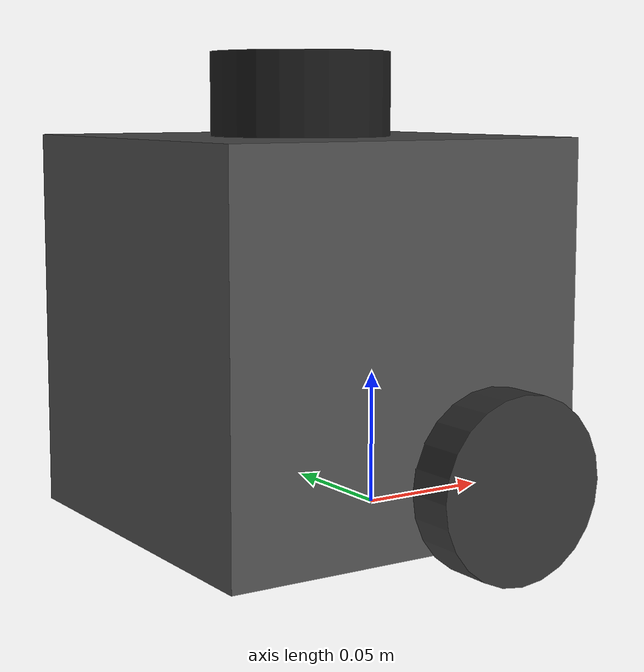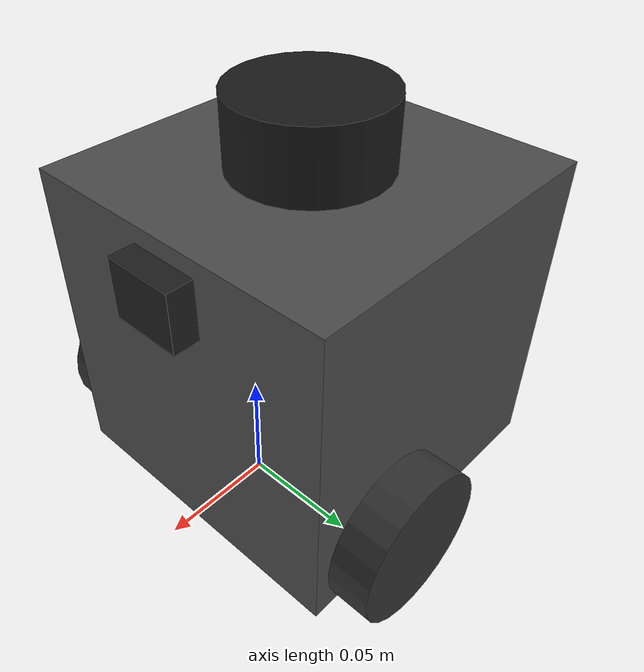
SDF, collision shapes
<?xml version="1.0" ?>
<sdf version="1.8">
  <model name="turtlebot3_burger">

    <pose>0 0 0 0 0 0</pose>

    <link name="base_footprint"/>

    <link name="base_link">

      <inertial>
        <pose>-0.064 0 0.070 0 0 0</pose>
        <inertia>
          <ixx>1.9527e-02</ixx>
          <ixy>0</ixy>
          <ixz>0</ixz>
          <iyy>1.9527e-02</iyy>
          <iyz>0</iyz>
          <izz>1.9527e-02</izz>
        </inertia>
        <mass>8.2573504e-01</mass>
      </inertial>

      <collision name="base_collision">
        <pose>-0.032 0 0.070 0 0 0</pose>
        <geometry>
          <box>
            <size>0.14 0.14 0.14</size>
          </box>
        </geometry>
      </collision>

      <visual name="base_visual">
        <pose>-0.032 0 0 0 0 0</pose>
        <geometry>
          <mesh>
            <uri>model://turtlebot3_common/meshes/bases/burger_base.stl</uri>
            <scale>0.001 0.001 0.001</scale>
          </mesh>
        </geometry>
        <material>
          <ambient>0.3 0.3 0.3 1.0</ambient>
          <diffuse>0.3 0.3 0.3 1.0</diffuse>
        </material>
      </visual>

    </link>

    <link name="imu_link">
      <pose relative_to="base_link">-0.032 0 0.1 0 0 0</pose>
      <inertial>
        <mass>0.0177</mass>
        <inertia>
          <ixx>0.00000214</ixx>
          <ixy>0</ixy>
          <ixz>0</ixz>
          <iyy>0.00000213</iyy>
          <iyz>0</iyz>
          <izz>0.00000392</izz>
        </inertia>
      </inertial>

      <visual name="imu_body_visual">
        <pose>0 0 0 0 0 0</pose>

        <geometry>
          <box>
            <size>0.0362 0.0366 0.0102</size>
          </box>
        </geometry>

        <material>
          <ambient>0.15 0.15 0.15 1</ambient>
          <diffuse>0.15 0.15 0.15 1</diffuse>
        </material>
      </visual>

      <collision name="3dm_imu_collision">
        <geometry>
          <box>
            <size>0.0362 0.0366 0.0102</size>
          </box>
        </geometry>
      </collision>

      <sensor name="3dm_imu_sensor" type="imu">

        <always_on>true</always_on>
        <update_rate>200</update_rate>

        <topic>imu</topic>

        <gz_frame_id>imu_link</gz_frame_id>

        <imu>

          <angular_velocity>

            <x>
              <noise type="gaussian">
                <mean>0.0</mean>
                <stddev>2e-4</stddev>
              </noise>
            </x>

            <y>
              <noise type="gaussian">
                <mean>0.0</mean>
                <stddev>2e-4</stddev>
              </noise>
            </y>

            <z>
              <noise type="gaussian">
                <mean>0.0</mean>
                <stddev>2e-4</stddev>
              </noise>
            </z>

          </angular_velocity>

          <linear_acceleration>

            <x>
              <noise type="gaussian">
                <mean>0.0</mean>
                <stddev>0.003</stddev>
              </noise>
            </x>

            <y>
              <noise type="gaussian">
                <mean>0.0</mean>
                <stddev>0.003</stddev>
              </noise>
            </y>

            <z>
              <noise type="gaussian">
                <mean>0.0</mean>
                <stddev>0.003</stddev>
              </noise>
            </z>

          </linear_acceleration>

        </imu>

      </sensor>

    </link>

    <link name="base_scan">
      <pose relative_to="base_link">-0.032 0 0.14 0 0 0</pose>
      <inertial>
        <mass>0.265</mass>
        <inertia>
          <ixx>0.0001</ixx>
          <ixy>0</ixy>
          <ixz>0</ixz>
          <iyy>0.0001</iyy>
          <iyz>0</iyz>
          <izz>0.0001</izz>
        </inertia>
      </inertial>

      <collision name="livox_collision">
        <geometry>
          <cylinder>
            <radius>0.0325</radius>
            <length>0.060</length>
          </cylinder>
        </geometry>
      </collision>

      <visual name="livox_lower_body">
        <pose>0 0 0.012 0 0 0</pose>
        <geometry>
          <cylinder>
            <radius>0.0325</radius>
            <length>0.024</length>
          </cylinder>
        </geometry>
        <material>
          <ambient>0.10 0.10 0.10 1</ambient>
          <diffuse>0.10 0.10 0.10 1</diffuse>
        </material>
      </visual>

      <visual name="livox_middle_body">
        <pose>0 0 0.032 0 0 0</pose>
        <geometry>
          <cylinder>
            <radius>0.028</radius>
            <length>0.016</length>
          </cylinder>
        </geometry>
        <material>
          <ambient>0.16 0.16 0.16 1</ambient>
          <diffuse>0.16 0.16 0.16 1</diffuse>
        </material>
      </visual>

      <visual name="livox_scanner_body">
        <pose>0 0 0.046 0 0 0</pose>
        <geometry>
          <cylinder>
            <radius>0.024</radius>
            <length>0.012</length>
          </cylinder>
        </geometry>
        <material>
          <ambient>0.08 0.08 0.08 1</ambient>
          <diffuse>0.08 0.08 0.08 1</diffuse>
        </material>
      </visual>

      <sensor name="livox_sensor" type="gpu_lidar">

        <always_on>true</always_on>
        <visualize>true</visualize>

        <update_rate>10</update_rate>

        <topic>scan</topic>

        <gz_frame_id>base_scan</gz_frame_id>

        <lidar>

          <scan>

            <horizontal>
              <samples>720</samples>
              <resolution>1.0</resolution>
              <min_angle>-3.14159265</min_angle>
              <max_angle>3.14159265</max_angle>
            </horizontal>

            <vertical>
              <samples>32</samples>
              <resolution>1.0</resolution>
              <min_angle>-0.122173</min_angle>
              <max_angle>0.907571</max_angle>
            </vertical>
          </scan>

          <range>
            <min>0.10</min>
            <max>40.0</max>
            <resolution>0.01</resolution>
          </range>

          <noise>
            <type>gaussian</type>
            <mean>0.0</mean>
            <stddev>0.02</stddev>
          </noise>

        </lidar>

      </sensor>

    </link>

    <link name="wheel_left_link">

      <inertial>
        <pose>0 0.08 0.023 -1.57 0 0</pose>

        <inertia>
          <ixx>5.445e-05</ixx>
          <ixy>0</ixy>
          <ixz>0</ixz>
          <iyy>5.445e-05</iyy>
          <iyz>0</iyz>
          <izz>1.089e-04</izz>
        </inertia>

        <mass>0.1</mass>
      </inertial>

      <collision name="wheel_left_collision">

        <pose>0 0.08 0.023 -1.57 0 0</pose>

        <geometry>
          <cylinder>
            <radius>0.033</radius>
            <length>0.018</length>
          </cylinder>
        </geometry>

        <surface>

          <friction>
            <ode>
              <mu>100000.0</mu>
              <mu2>100000.0</mu2>
              <fdir1>0 0 0</fdir1>
              <slip1>0.0</slip1>
              <slip2>0.0</slip2>
            </ode>
          </friction>

          <contact>
            <ode>
              <soft_cfm>0</soft_cfm>
              <soft_erp>0.2</soft_erp>
              <kp>1e+5</kp>
              <kd>1</kd>
              <max_vel>0.01</max_vel>
              <min_depth>0.001</min_depth>
            </ode>
          </contact>

        </surface>

      </collision>

      <visual name="wheel_left_visual">

        <pose>0 0.08 0.023 0 0 0</pose>

        <geometry>
          <mesh>
            <uri>model://turtlebot3_common/meshes/wheels/left_tire.stl</uri>
            <scale>0.001 0.001 0.001</scale>
          </mesh>
        </geometry>

        <material>
          <ambient>0.2 0.2 0.2 1.0</ambient>
          <diffuse>0.2 0.2 0.2 1.0</diffuse>
        </material>

      </visual>

    </link>

    <link name="wheel_right_link">

      <inertial>

        <pose>0 -0.08 0.023 -1.57 0 0</pose>

        <inertia>
          <ixx>5.445e-05</ixx>
          <ixy>0</ixy>
          <ixz>0</ixz>
          <iyy>5.445e-05</iyy>
          <iyz>0</iyz>
          <izz>1.089e-04</izz>
        </inertia>

        <mass>0.1</mass>

      </inertial>

      <collision name="wheel_right_collision">

        <pose>0 -0.08 0.023 -1.57 0 0</pose>

        <geometry>
          <cylinder>
            <radius>0.033</radius>
            <length>0.018</length>
          </cylinder>
        </geometry>

        <surface>

          <friction>
            <ode>
              <mu>100000.0</mu>
              <mu2>100000.0</mu2>
              <fdir1>0 0 0</fdir1>
              <slip1>0.0</slip1>
              <slip2>0.0</slip2>
            </ode>
          </friction>

          <contact>
            <ode>
              <soft_cfm>0</soft_cfm>
              <soft_erp>0.2</soft_erp>
              <kp>1e+5</kp>
              <kd>1</kd>
              <max_vel>0.01</max_vel>
              <min_depth>0.001</min_depth>
            </ode>
          </contact>

        </surface>

      </collision>

      <visual name="wheel_right_visual">

        <pose>0 -0.08 0.023 0 0 0</pose>

        <geometry>
          <mesh>
            <uri>model://turtlebot3_common/meshes/wheels/right_tire.stl</uri>
            <scale>0.001 0.001 0.001</scale>
          </mesh>
        </geometry>

        <material>
          <ambient>0.2 0.2 0.2 1.0</ambient>
          <diffuse>0.2 0.2 0.2 1.0</diffuse>
        </material>

      </visual>

    </link>

    <link name="caster_back_link">

      <pose>-0.081 0 -0.004 -1.57 0 0</pose>

      <inertial>

        <mass>0.005</mass>

        <inertia>
          <ixx>0.00001</ixx>
          <ixy>0</ixy>
          <ixz>0</ixz>
          <iyy>0.00001</iyy>
          <iyz>0</iyz>
          <izz>0.00001</izz>
        </inertia>

      </inertial>

      <collision name="collision">

        <geometry>
          <sphere>
            <radius>0.005</radius>
          </sphere>
        </geometry>

        <surface>
          <contact>
            <ode>
              <soft_cfm>0</soft_cfm>
              <soft_erp>0.2</soft_erp>
              <kp>1e+5</kp>
              <kd>1</kd>
              <max_vel>0.01</max_vel>
              <min_depth>0.001</min_depth>
            </ode>
          </contact>
        </surface>

      </collision>

    </link>

    <link name="camera_link">
      <pose relative_to="base_link"> 0 0 0.12 0 0 1.5708</pose>
      <visual name="oakd_body_visual">
        <geometry>
          <box>
            <size>0.100 0.030 0.025</size>
          </box>
        </geometry>
        <material>
          <ambient>0.12 0.12 0.12 1</ambient>
          <diffuse>0.12 0.12 0.12 1</diffuse>
        </material>
      </visual>

      <visual name="oakd_left_lens_visual">
        <pose>0.035 -0.016 0 1.5708 0 0</pose>
        <geometry>
          <cylinder>
            <radius>0.008</radius>
            <length>0.004</length>
          </cylinder>
        </geometry>
        <material>
          <ambient>0.02 0.02 0.02 1</ambient>
          <diffuse>0.02 0.02 0.02 1</diffuse>
        </material>
      </visual>

      <visual name="oakd_center_lens_visual">
        <pose>0 -0.016 0 1.5708 0 0</pose>
        <geometry>
          <cylinder>
            <radius>0.007</radius>
            <length>0.004</length>
          </cylinder>
        </geometry>
        <material>
          <ambient>0.02 0.02 0.02 1</ambient>
          <diffuse>0.02 0.02 0.02 1</diffuse>
        </material>
      </visual>

      <visual name="oakd_right_lens_visual">
        <pose>-0.035 -0.016 0 1.5708 0 0</pose>
        <geometry>
          <cylinder>
            <radius>0.008</radius>
            <length>0.004</length>
          </cylinder>
        </geometry>
        <material>
          <ambient>0.02 0.02 0.02 1</ambient>
          <diffuse>0.02 0.02 0.02 1</diffuse>
        </material>
      </visual>

      <collision name="oakd_collision">
        <geometry>
          <box>
            <size>0.030 0.098 0.025</size>
          </box>
        </geometry>
      </collision>

      <sensor name="oakd_rgb" type="camera">

        <always_on>true</always_on>
        <visualize>true</visualize>

        <update_rate>5</update_rate>

        <topic>oakd/rgb/image_raw</topic>

        <gz_frame_id>oakd_rgb_optical_frame</gz_frame_id>

        <pose>0 0 0 0 0 -1.5708</pose>

        <camera>

          <camera_info_topic>
            oakd/rgb/camera_info
          </camera_info_topic>

          <horizontal_fov>1.20</horizontal_fov>

          <image>
            <width>640</width>
            <height>480</height>
            <format>R8G8B8</format>
          </image>

          <clip>
            <near>0.05</near>
            <far>100.0</far>
          </clip>

        </camera>

      </sensor>

      <sensor name="oakd_depth" type="depth_camera">

        <always_on>true</always_on>
        <visualize>false</visualize>

        <update_rate>5</update_rate>

        <topic>oakd/depth/image_raw</topic>

        <gz_frame_id>oakd_depth_optical_frame</gz_frame_id>

        <pose>0 0 0 0 0 -1.5708</pose>

        <camera>

          <camera_info_topic>
            oakd/depth/camera_info
          </camera_info_topic>

          <horizontal_fov>1.20</horizontal_fov>

          <image>
            <width>640</width>
            <height>480</height>
            <format>R_FLOAT32</format>
          </image>

          <clip>
            <near>0.20</near>
            <far>30.0</far>
          </clip>

        </camera>

      </sensor>

    </link>

    <joint name="base_joint" type="fixed">
      <parent>base_footprint</parent>
      <child>base_link</child>
      <pose>0 0 0.010 0 0 0</pose>
    </joint>

    <joint name="wheel_left_joint" type="revolute">

      <parent>base_link</parent>
      <child>wheel_left_link</child>

      <pose>0 0.08 0.023 -1.57 0 0</pose>

      <axis>
        <xyz>0 0 1</xyz>

        <limit>
          <effort>20</effort>
        </limit>

      </axis>

    </joint>

    <joint name="wheel_right_joint" type="revolute">

      <parent>base_link</parent>
      <child>wheel_right_link</child>

      <pose>0 -0.08 0.023 -1.57 0 0</pose>

      <axis>

        <xyz>0 0 1</xyz>

        <limit>
          <effort>20</effort>
        </limit>

      </axis>

    </joint>

    <joint name="caster_back_joint" type="ball">
      <parent>base_link</parent>
      <child>caster_back_link</child>
    </joint>

    <joint name="3dm_imu_joint" type="fixed">

      <parent>base_link</parent>
      <child>imu_link</child>

      <pose>-0.032 0 1 0 0 0</pose>

    </joint>

    <joint name="livox_joint" type="fixed">

      <parent>base_link</parent>
      <child>base_scan</child>

      <pose>-0.032 0 0.5 0 0 0</pose>

    </joint>

    <joint name="oakd_joint" type="fixed">

      <parent>base_link</parent>
      <child>camera_link</child>
      <pose>0 0 0.10 0 0 0</pose>
    </joint>

    <plugin
      filename="gz-sim-diff-drive-system"
      name="gz::sim::systems::DiffDrive">

      <left_joint>wheel_left_joint</left_joint>
      <right_joint>wheel_right_joint</right_joint>

      <wheel_separation>0.160</wheel_separation>
      <wheel_radius>0.033</wheel_radius>

      <max_linear_acceleration>1.0</max_linear_acceleration>

      <topic>cmd_vel</topic>

      <odom_topic>odom</odom_topic>

      <frame_id>odom</frame_id>
      <child_frame_id>base_footprint</child_frame_id>

      <odom_publisher_frequency>30</odom_publisher_frequency>

      <tf_topic>/tf</tf_topic>

    </plugin>

    <plugin
      filename="gz-sim-joint-state-publisher-system"
      name="gz::sim::systems::JointStatePublisher">

      <topic>joint_states</topic>

      <joint_name>wheel_left_joint</joint_name>
      <joint_name>wheel_right_joint</joint_name>

    </plugin>

  </model>
</sdf>
